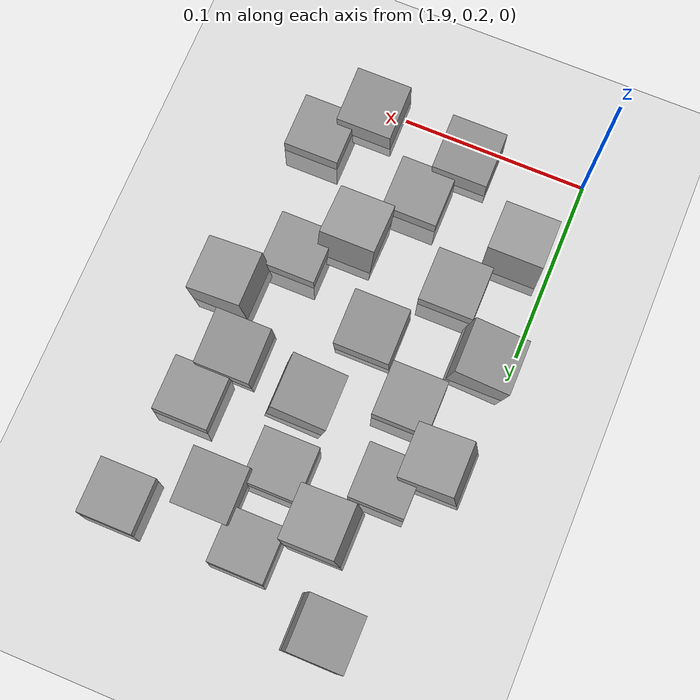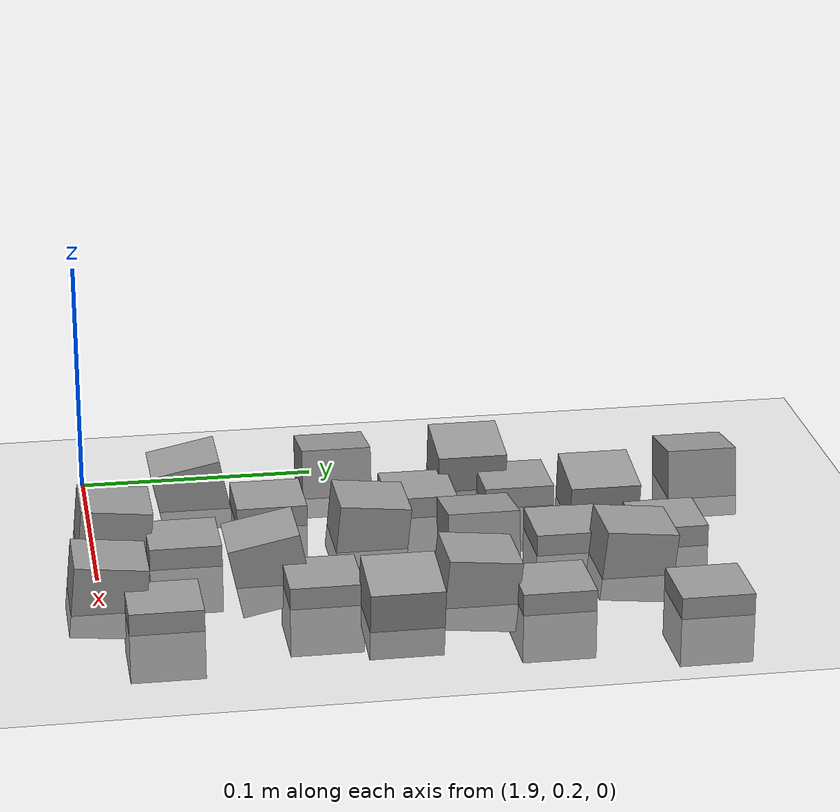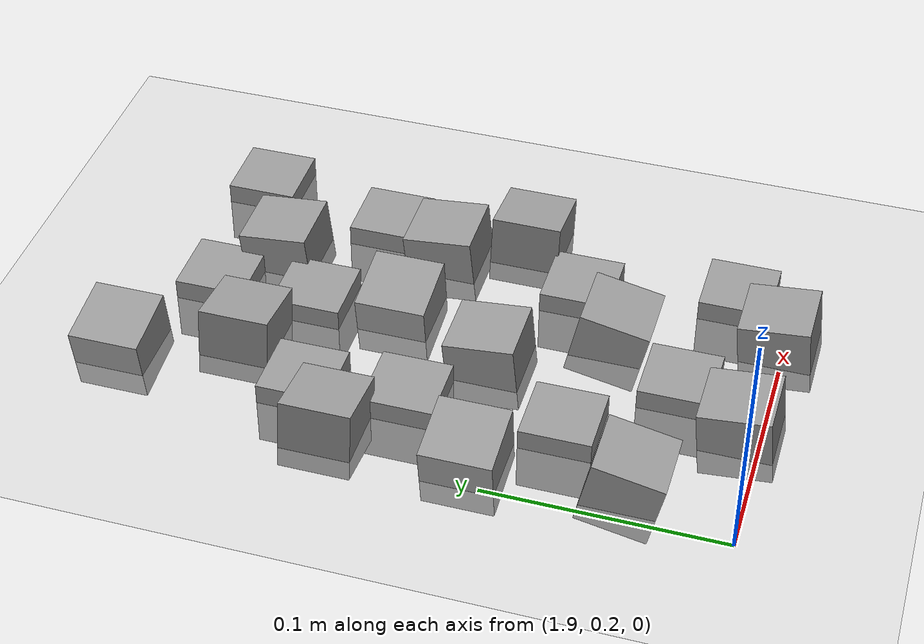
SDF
<sdf version="1.7">
 <world name="default">
  <model name="ground_plane">
   <static>1</static>
   <link name="link">
    <collision name="collision">
     <geometry><plane><normal>0 0 1</normal><size>100 100</size></plane></geometry>
     <surface><friction><ode><mu>100</mu><mu2>50</mu2></ode></friction></surface>
    </collision>
    <visual name="visual">
     <cast_shadows>0</cast_shadows>
     <geometry><plane><normal>0 0 1</normal><size>100 100</size></plane></geometry>
     <material>
      <script><uri>file://media/materials/scripts/gazebo.material</uri><name>Gazebo/Grey</name></script>
     </material>
    </visual>
   </link>
  </model>
  <model name="stone_road_3">
   <link name="link_0_clone_0">
    <inertial>
     <mass>1</mass>
     <inertia>
      <ixx>0.166667</ixx>
      <ixy>0</ixy>
      <ixz>0</ixz>
      <iyy>0.166667</iyy>
      <iyz>0</iyz>
      <izz>0.166667</izz>
     </inertia>
    </inertial>
    <pose>-0.104982 -0.15412 0.003778 0.2 -0 0</pose>
    <kinematic>1</kinematic>
    <visual name="visual">
     <geometry><box><size>0.03 0.03 0.03</size></box></geometry>
     <material>
      <lighting>1</lighting>
      <script><uri>file://media/materials/scripts/gazebo.material</uri><name>Gazebo/Grey</name></script>
      <shader type="pixel"><normal_map>__default__</normal_map></shader>
      <ambient>0.3 0.3 0.3 1</ambient>
      <diffuse>0.7 0.7 0.7 1</diffuse>
      <specular>0.01 0.01 0.01 1</specular>
      <emissive>0 0 0 1</emissive>
     </material>
    </visual>
    <collision name="collision">
     <geometry><box><size>0.03 0.03 0.03</size></box></geometry>
     <surface>
      <friction>
       <ode><mu>1</mu><mu2>1</mu2><fdir1>0 0 0</fdir1><slip1>0</slip1><slip2>0</slip2></ode>
       <torsional>
        <coefficient>1</coefficient>
        <patch_radius>0</patch_radius>
        <surface_radius>0</surface_radius>
        <use_patch_radius>1</use_patch_radius>
        <ode><slip>0</slip></ode>
       </torsional>
      </friction>
      <bounce><restitution_coefficient>0</restitution_coefficient><threshold>1e+06</threshold></bounce>
      <contact>
       <collide_without_contact>0</collide_without_contact>
       <collide_without_contact_bitmask>1</collide_without_contact_bitmask>
       <collide_bitmask>1</collide_bitmask>
       <ode>
        <soft_cfm>0</soft_cfm>
        <soft_erp>0.2</soft_erp>
        <kp>1e+13</kp>
        <kd>1</kd>
        <max_vel>0.01</max_vel>
        <min_depth>0</min_depth>
       </ode>
       <bullet>
        <split_impulse>1</split_impulse>
        <split_impulse_penetration_threshold>-0.01</split_impulse_penetration_threshold>
        <soft_cfm>0</soft_cfm>
        <soft_erp>0.2</soft_erp>
        <kp>1e+13</kp>
        <kd>1</kd>
       </bullet>
      </contact>
     </surface>
    </collision>
   </link>
   <link name="link_0_clone_1">
    <inertial>
     <mass>1</mass>
     <inertia>
      <ixx>0.166667</ixx>
      <ixy>0</ixy>
      <ixz>0</ixz>
      <iyy>0.166667</iyy>
      <iyz>0</iyz>
      <izz>0.166667</izz>
     </inertia>
    </inertial>
    <pose>-0.022921 -0.129606 0.003778 0.2 -0 0</pose>
    <kinematic>1</kinematic>
    <visual name="visual">
     <geometry><box><size>0.03 0.03 0.03</size></box></geometry>
     <material>
      <lighting>1</lighting>
      <script><uri>file://media/materials/scripts/gazebo.material</uri><name>Gazebo/Grey</name></script>
      <shader type="pixel"><normal_map>__default__</normal_map></shader>
      <ambient>0.3 0.3 0.3 1</ambient>
      <diffuse>0.7 0.7 0.7 1</diffuse>
      <specular>0.01 0.01 0.01 1</specular>
      <emissive>0 0 0 1</emissive>
     </material>
    </visual>
    <collision name="collision">
     <geometry><box><size>0.03 0.03 0.03</size></box></geometry>
     <surface>
      <friction>
       <ode><mu>1</mu><mu2>1</mu2><fdir1>0 0 0</fdir1><slip1>0</slip1><slip2>0</slip2></ode>
       <torsional>
        <coefficient>1</coefficient>
        <patch_radius>0</patch_radius>
        <surface_radius>0</surface_radius>
        <use_patch_radius>1</use_patch_radius>
        <ode><slip>0</slip></ode>
       </torsional>
      </friction>
      <bounce><restitution_coefficient>0</restitution_coefficient><threshold>1e+06</threshold></bounce>
      <contact>
       <collide_without_contact>0</collide_without_contact>
       <collide_without_contact_bitmask>1</collide_without_contact_bitmask>
       <collide_bitmask>1</collide_bitmask>
       <ode>
        <soft_cfm>0</soft_cfm>
        <soft_erp>0.2</soft_erp>
        <kp>1e+13</kp>
        <kd>1</kd>
        <max_vel>0.01</max_vel>
        <min_depth>0</min_depth>
       </ode>
       <bullet>
        <split_impulse>1</split_impulse>
        <split_impulse_penetration_threshold>-0.01</split_impulse_penetration_threshold>
        <soft_cfm>0</soft_cfm>
        <soft_erp>0.2</soft_erp>
        <kp>1e+13</kp>
        <kd>1</kd>
       </bullet>
      </contact>
     </surface>
    </collision>
   </link>
   <link name="link_0_clone_2">
    <inertial>
     <mass>1</mass>
     <inertia>
      <ixx>0.166667</ixx>
      <ixy>0</ixy>
      <ixz>0</ixz>
      <iyy>0.166667</iyy>
      <iyz>0</iyz>
      <izz>0.166667</izz>
     </inertia>
    </inertial>
    <pose>-0.065685 0.018139 0.003778 0 0.15 0</pose>
    <kinematic>1</kinematic>
    <visual name="visual">
     <geometry><box><size>0.03 0.03 0.03</size></box></geometry>
     <material>
      <lighting>1</lighting>
      <script><uri>file://media/materials/scripts/gazebo.material</uri><name>Gazebo/Grey</name></script>
      <shader type="pixel"><normal_map>__default__</normal_map></shader>
      <ambient>0.3 0.3 0.3 1</ambient>
      <diffuse>0.7 0.7 0.7 1</diffuse>
      <specular>0.01 0.01 0.01 1</specular>
      <emissive>0 0 0 1</emissive>
     </material>
    </visual>
    <collision name="collision">
     <geometry><box><size>0.03 0.03 0.03</size></box></geometry>
     <surface>
      <friction>
       <ode><mu>1</mu><mu2>1</mu2><fdir1>0 0 0</fdir1><slip1>0</slip1><slip2>0</slip2></ode>
       <torsional>
        <coefficient>1</coefficient>
        <patch_radius>0</patch_radius>
        <surface_radius>0</surface_radius>
        <use_patch_radius>1</use_patch_radius>
        <ode><slip>0</slip></ode>
       </torsional>
      </friction>
      <bounce><restitution_coefficient>0</restitution_coefficient><threshold>1e+06</threshold></bounce>
      <contact>
       <collide_without_contact>0</collide_without_contact>
       <collide_without_contact_bitmask>1</collide_without_contact_bitmask>
       <collide_bitmask>1</collide_bitmask>
       <ode>
        <soft_cfm>0</soft_cfm>
        <soft_erp>0.2</soft_erp>
        <kp>1e+13</kp>
        <kd>1</kd>
        <max_vel>0.01</max_vel>
        <min_depth>0</min_depth>
       </ode>
       <bullet>
        <split_impulse>1</split_impulse>
        <split_impulse_penetration_threshold>-0.01</split_impulse_penetration_threshold>
        <soft_cfm>0</soft_cfm>
        <soft_erp>0.2</soft_erp>
        <kp>1e+13</kp>
        <kd>1</kd>
       </bullet>
      </contact>
     </surface>
    </collision>
   </link>
   <link name="link_0_clone_2_clone">
    <inertial>
     <mass>1</mass>
     <inertia>
      <ixx>0.166667</ixx>
      <ixy>0</ixy>
      <ixz>0</ixz>
      <iyy>0.166667</iyy>
      <iyz>0</iyz>
      <izz>0.166667</izz>
     </inertia>
    </inertial>
    <pose>-0.10771 -0.03187 0.003778 0 0.15 0</pose>
    <kinematic>1</kinematic>
    <visual name="visual">
     <geometry><box><size>0.03 0.03 0.03</size></box></geometry>
     <material>
      <lighting>1</lighting>
      <script><uri>file://media/materials/scripts/gazebo.material</uri><name>Gazebo/Grey</name></script>
      <shader type="pixel"><normal_map>__default__</normal_map></shader>
      <ambient>0.3 0.3 0.3 1</ambient>
      <diffuse>0.7 0.7 0.7 1</diffuse>
      <specular>0.01 0.01 0.01 1</specular>
      <emissive>0 0 0 1</emissive>
     </material>
    </visual>
    <collision name="collision">
     <geometry><box><size>0.03 0.03 0.03</size></box></geometry>
     <surface>
      <friction>
       <ode><mu>1</mu><mu2>1</mu2><fdir1>0 0 0</fdir1><slip1>0</slip1><slip2>0</slip2></ode>
       <torsional>
        <coefficient>1</coefficient>
        <patch_radius>0</patch_radius>
        <surface_radius>0</surface_radius>
        <use_patch_radius>1</use_patch_radius>
        <ode><slip>0</slip></ode>
       </torsional>
      </friction>
      <bounce><restitution_coefficient>0</restitution_coefficient><threshold>1e+06</threshold></bounce>
      <contact>
       <collide_without_contact>0</collide_without_contact>
       <collide_without_contact_bitmask>1</collide_without_contact_bitmask>
       <collide_bitmask>1</collide_bitmask>
       <ode>
        <soft_cfm>0</soft_cfm>
        <soft_erp>0.2</soft_erp>
        <kp>1e+13</kp>
        <kd>1</kd>
        <max_vel>0.01</max_vel>
        <min_depth>0</min_depth>
       </ode>
       <bullet>
        <split_impulse>1</split_impulse>
        <split_impulse_penetration_threshold>-0.01</split_impulse_penetration_threshold>
        <soft_cfm>0</soft_cfm>
        <soft_erp>0.2</soft_erp>
        <kp>1e+13</kp>
        <kd>1</kd>
       </bullet>
      </contact>
     </surface>
    </collision>
   </link>
   <link name="link_0_clone_2_clone_0">
    <inertial>
     <mass>1</mass>
     <inertia>
      <ixx>0.166667</ixx>
      <ixy>0</ixy>
      <ixz>0</ixz>
      <iyy>0.166667</iyy>
      <iyz>0</iyz>
      <izz>0.166667</izz>
     </inertia>
    </inertial>
    <pose>0.026852 -0.0813 0.003778 0 0.15 0</pose>
    <kinematic>1</kinematic>
    <visual name="visual">
     <geometry><box><size>0.03 0.03 0.03</size></box></geometry>
     <material>
      <lighting>1</lighting>
      <script><uri>file://media/materials/scripts/gazebo.material</uri><name>Gazebo/Grey</name></script>
      <shader type="pixel"><normal_map>__default__</normal_map></shader>
      <ambient>0.3 0.3 0.3 1</ambient>
      <diffuse>0.7 0.7 0.7 1</diffuse>
      <specular>0.01 0.01 0.01 1</specular>
      <emissive>0 0 0 1</emissive>
     </material>
    </visual>
    <collision name="collision">
     <geometry><box><size>0.03 0.03 0.03</size></box></geometry>
     <surface>
      <friction>
       <ode><mu>1</mu><mu2>1</mu2><fdir1>0 0 0</fdir1><slip1>0</slip1><slip2>0</slip2></ode>
       <torsional>
        <coefficient>1</coefficient>
        <patch_radius>0</patch_radius>
        <surface_radius>0</surface_radius>
        <use_patch_radius>1</use_patch_radius>
        <ode><slip>0</slip></ode>
       </torsional>
      </friction>
      <bounce><restitution_coefficient>0</restitution_coefficient><threshold>1e+06</threshold></bounce>
      <contact>
       <collide_without_contact>0</collide_without_contact>
       <collide_without_contact_bitmask>1</collide_without_contact_bitmask>
       <collide_bitmask>1</collide_bitmask>
       <ode>
        <soft_cfm>0</soft_cfm>
        <soft_erp>0.2</soft_erp>
        <kp>1e+13</kp>
        <kd>1</kd>
        <max_vel>0.01</max_vel>
        <min_depth>0</min_depth>
       </ode>
       <bullet>
        <split_impulse>1</split_impulse>
        <split_impulse_penetration_threshold>-0.01</split_impulse_penetration_threshold>
        <soft_cfm>0</soft_cfm>
        <soft_erp>0.2</soft_erp>
        <kp>1e+13</kp>
        <kd>1</kd>
       </bullet>
      </contact>
     </surface>
    </collision>
   </link>
   <link name="link_0_clone_2_clone_2_clone_0">
    <inertial>
     <mass>1</mass>
     <inertia>
      <ixx>0.166667</ixx>
      <ixy>0</ixy>
      <ixz>0</ixz>
      <iyy>0.166667</iyy>
      <iyz>0</iyz>
      <izz>0.166667</izz>
     </inertia>
    </inertial>
    <pose>-0.032874 -0.039714 0.003778 0 -0.15 0</pose>
    <kinematic>1</kinematic>
    <visual name="visual">
     <geometry><box><size>0.03 0.03 0.03</size></box></geometry>
     <material>
      <lighting>1</lighting>
      <script><uri>file://media/materials/scripts/gazebo.material</uri><name>Gazebo/Grey</name></script>
      <shader type="pixel"><normal_map>__default__</normal_map></shader>
      <ambient>0.3 0.3 0.3 1</ambient>
      <diffuse>0.7 0.7 0.7 1</diffuse>
      <specular>0.01 0.01 0.01 1</specular>
      <emissive>0 0 0 1</emissive>
     </material>
    </visual>
    <collision name="collision">
     <geometry><box><size>0.03 0.03 0.03</size></box></geometry>
     <surface>
      <friction>
       <ode><mu>1</mu><mu2>1</mu2><fdir1>0 0 0</fdir1><slip1>0</slip1><slip2>0</slip2></ode>
       <torsional>
        <coefficient>1</coefficient>
        <patch_radius>0</patch_radius>
        <surface_radius>0</surface_radius>
        <use_patch_radius>1</use_patch_radius>
        <ode><slip>0</slip></ode>
       </torsional>
      </friction>
      <bounce><restitution_coefficient>0</restitution_coefficient><threshold>1e+06</threshold></bounce>
      <contact>
       <collide_without_contact>0</collide_without_contact>
       <collide_without_contact_bitmask>1</collide_without_contact_bitmask>
       <collide_bitmask>1</collide_bitmask>
       <ode>
        <soft_cfm>0</soft_cfm>
        <soft_erp>0.2</soft_erp>
        <kp>1e+13</kp>
        <kd>1</kd>
        <max_vel>0.01</max_vel>
        <min_depth>0</min_depth>
       </ode>
       <bullet>
        <split_impulse>1</split_impulse>
        <split_impulse_penetration_threshold>-0.01</split_impulse_penetration_threshold>
        <soft_cfm>0</soft_cfm>
        <soft_erp>0.2</soft_erp>
        <kp>1e+13</kp>
        <kd>1</kd>
       </bullet>
      </contact>
     </surface>
    </collision>
   </link>
   <link name="link_0_clone_2_clone_2_clone_1">
    <inertial>
     <mass>1</mass>
     <inertia>
      <ixx>0.166667</ixx>
      <ixy>0</ixy>
      <ixz>0</ixz>
      <iyy>0.166667</iyy>
      <iyz>0</iyz>
      <izz>0.166667</izz>
     </inertia>
    </inertial>
    <pose>-0.085624 0.065625 0.003778 0 -0.15 0</pose>
    <kinematic>1</kinematic>
    <visual name="visual">
     <geometry><box><size>0.03 0.03 0.03</size></box></geometry>
     <material>
      <lighting>1</lighting>
      <script><uri>file://media/materials/scripts/gazebo.material</uri><name>Gazebo/Grey</name></script>
      <shader type="pixel"><normal_map>__default__</normal_map></shader>
      <ambient>0.3 0.3 0.3 1</ambient>
      <diffuse>0.7 0.7 0.7 1</diffuse>
      <specular>0.01 0.01 0.01 1</specular>
      <emissive>0 0 0 1</emissive>
     </material>
    </visual>
    <collision name="collision">
     <geometry><box><size>0.03 0.03 0.03</size></box></geometry>
     <surface>
      <friction>
       <ode><mu>1</mu><mu2>1</mu2><fdir1>0 0 0</fdir1><slip1>0</slip1><slip2>0</slip2></ode>
       <torsional>
        <coefficient>1</coefficient>
        <patch_radius>0</patch_radius>
        <surface_radius>0</surface_radius>
        <use_patch_radius>1</use_patch_radius>
        <ode><slip>0</slip></ode>
       </torsional>
      </friction>
      <bounce><restitution_coefficient>0</restitution_coefficient><threshold>1e+06</threshold></bounce>
      <contact>
       <collide_without_contact>0</collide_without_contact>
       <collide_without_contact_bitmask>1</collide_without_contact_bitmask>
       <collide_bitmask>1</collide_bitmask>
       <ode>
        <soft_cfm>0</soft_cfm>
        <soft_erp>0.2</soft_erp>
        <kp>1e+13</kp>
        <kd>1</kd>
        <max_vel>0.01</max_vel>
        <min_depth>0</min_depth>
       </ode>
       <bullet>
        <split_impulse>1</split_impulse>
        <split_impulse_penetration_threshold>-0.01</split_impulse_penetration_threshold>
        <soft_cfm>0</soft_cfm>
        <soft_erp>0.2</soft_erp>
        <kp>1e+13</kp>
        <kd>1</kd>
       </bullet>
      </contact>
     </surface>
    </collision>
   </link>
   <link name="link_0_clone_2_clone_2_clone_13_clone_clone_10">
    <inertial>
     <mass>1</mass>
     <inertia>
      <ixx>0.166667</ixx>
      <ixy>0</ixy>
      <ixz>0</ixz>
      <iyy>0.166667</iyy>
      <iyz>0</iyz>
      <izz>0.166667</izz>
     </inertia>
    </inertial>
    <pose>-0.006825 -0.196489 0.003778 -0.1 0 0</pose>
    <kinematic>1</kinematic>
    <visual name="visual">
     <geometry><box><size>0.03 0.03 0.03</size></box></geometry>
     <material>
      <lighting>1</lighting>
      <script><uri>file://media/materials/scripts/gazebo.material</uri><name>Gazebo/Grey</name></script>
      <shader type="pixel"><normal_map>__default__</normal_map></shader>
      <ambient>0.3 0.3 0.3 1</ambient>
      <diffuse>0.7 0.7 0.7 1</diffuse>
      <specular>0.01 0.01 0.01 1</specular>
      <emissive>0 0 0 1</emissive>
     </material>
    </visual>
    <collision name="collision">
     <geometry><box><size>0.03 0.03 0.03</size></box></geometry>
     <surface>
      <friction>
       <ode><mu>1</mu><mu2>1</mu2><fdir1>0 0 0</fdir1><slip1>0</slip1><slip2>0</slip2></ode>
       <torsional>
        <coefficient>1</coefficient>
        <patch_radius>0</patch_radius>
        <surface_radius>0</surface_radius>
        <use_patch_radius>1</use_patch_radius>
        <ode><slip>0</slip></ode>
       </torsional>
      </friction>
      <bounce><restitution_coefficient>0</restitution_coefficient><threshold>1e+06</threshold></bounce>
      <contact>
       <collide_without_contact>0</collide_without_contact>
       <collide_without_contact_bitmask>1</collide_without_contact_bitmask>
       <collide_bitmask>1</collide_bitmask>
       <ode>
        <soft_cfm>0</soft_cfm>
        <soft_erp>0.2</soft_erp>
        <kp>1e+13</kp>
        <kd>1</kd>
        <max_vel>0.01</max_vel>
        <min_depth>0</min_depth>
       </ode>
       <bullet>
        <split_impulse>1</split_impulse>
        <split_impulse_penetration_threshold>-0.01</split_impulse_penetration_threshold>
        <soft_cfm>0</soft_cfm>
        <soft_erp>0.2</soft_erp>
        <kp>1e+13</kp>
        <kd>1</kd>
       </bullet>
      </contact>
     </surface>
    </collision>
   </link>
   <link name="link_0_clone_2_clone_2_clone_13_clone_clone_16_clone_1">
    <inertial>
     <mass>1</mass>
     <inertia>
      <ixx>0.166667</ixx>
      <ixy>0</ixy>
      <ixz>0</ixz>
      <iyy>0.166667</iyy>
      <iyz>0</iyz>
      <izz>0.166667</izz>
     </inertia>
    </inertial>
    <pose>0.033787 0.042837 -0.006222 0 -0 0</pose>
    <kinematic>1</kinematic>
    <visual name="visual">
     <geometry><box><size>0.03 0.03 0.03</size></box></geometry>
     <material>
      <lighting>1</lighting>
      <script><uri>file://media/materials/scripts/gazebo.material</uri><name>Gazebo/Grey</name></script>
      <shader type="pixel"><normal_map>__default__</normal_map></shader>
      <ambient>0.3 0.3 0.3 1</ambient>
      <diffuse>0.7 0.7 0.7 1</diffuse>
      <specular>0.01 0.01 0.01 1</specular>
      <emissive>0 0 0 1</emissive>
     </material>
    </visual>
    <collision name="collision">
     <geometry><box><size>0.03 0.03 0.03</size></box></geometry>
     <surface>
      <friction>
       <ode><mu>1</mu><mu2>1</mu2><fdir1>0 0 0</fdir1><slip1>0</slip1><slip2>0</slip2></ode>
       <torsional>
        <coefficient>1</coefficient>
        <patch_radius>0</patch_radius>
        <surface_radius>0</surface_radius>
        <use_patch_radius>1</use_patch_radius>
        <ode><slip>0</slip></ode>
       </torsional>
      </friction>
      <bounce><restitution_coefficient>0</restitution_coefficient><threshold>1e+06</threshold></bounce>
      <contact>
       <collide_without_contact>0</collide_without_contact>
       <collide_without_contact_bitmask>1</collide_without_contact_bitmask>
       <collide_bitmask>1</collide_bitmask>
       <ode>
        <soft_cfm>0</soft_cfm>
        <soft_erp>0.2</soft_erp>
        <kp>1e+13</kp>
        <kd>1</kd>
        <max_vel>0.01</max_vel>
        <min_depth>0</min_depth>
       </ode>
       <bullet>
        <split_impulse>1</split_impulse>
        <split_impulse_penetration_threshold>-0.01</split_impulse_penetration_threshold>
        <soft_cfm>0</soft_cfm>
        <soft_erp>0.2</soft_erp>
        <kp>1e+13</kp>
        <kd>1</kd>
       </bullet>
      </contact>
     </surface>
    </collision>
   </link>
   <link name="link_0_clone_2_clone_2_clone_13_clone_clone_16_clone_10">
    <inertial>
     <mass>1</mass>
     <inertia>
      <ixx>0.166667</ixx>
      <ixy>0</ixy>
      <ixz>0</ixz>
      <iyy>0.166667</iyy>
      <iyz>0</iyz>
      <izz>0.166667</izz>
     </inertia>
    </inertial>
    <pose>-0.082186 -0.05781 -0.006222 0 -0 0</pose>
    <kinematic>1</kinematic>
    <visual name="visual">
     <geometry><box><size>0.03 0.03 0.03</size></box></geometry>
     <material>
      <lighting>1</lighting>
      <script><uri>file://media/materials/scripts/gazebo.material</uri><name>Gazebo/Grey</name></script>
      <shader type="pixel"><normal_map>__default__</normal_map></shader>
      <ambient>0.3 0.3 0.3 1</ambient>
      <diffuse>0.7 0.7 0.7 1</diffuse>
      <specular>0.01 0.01 0.01 1</specular>
      <emissive>0 0 0 1</emissive>
     </material>
    </visual>
    <collision name="collision">
     <geometry><box><size>0.03 0.03 0.03</size></box></geometry>
     <surface>
      <friction>
       <ode><mu>1</mu><mu2>1</mu2><fdir1>0 0 0</fdir1><slip1>0</slip1><slip2>0</slip2></ode>
       <torsional>
        <coefficient>1</coefficient>
        <patch_radius>0</patch_radius>
        <surface_radius>0</surface_radius>
        <use_patch_radius>1</use_patch_radius>
        <ode><slip>0</slip></ode>
       </torsional>
      </friction>
      <bounce><restitution_coefficient>0</restitution_coefficient><threshold>1e+06</threshold></bounce>
      <contact>
       <collide_without_contact>0</collide_without_contact>
       <collide_without_contact_bitmask>1</collide_without_contact_bitmask>
       <collide_bitmask>1</collide_bitmask>
       <ode>
        <soft_cfm>0</soft_cfm>
        <soft_erp>0.2</soft_erp>
        <kp>1e+13</kp>
        <kd>1</kd>
        <max_vel>0.01</max_vel>
        <min_depth>0</min_depth>
       </ode>
       <bullet>
        <split_impulse>1</split_impulse>
        <split_impulse_penetration_threshold>-0.01</split_impulse_penetration_threshold>
        <soft_cfm>0</soft_cfm>
        <soft_erp>0.2</soft_erp>
        <kp>1e+13</kp>
        <kd>1</kd>
       </bullet>
      </contact>
     </surface>
    </collision>
   </link>
   <link name="link_0_clone_2_clone_2_clone_13_clone_clone_16_clone_17">
    <inertial>
     <mass>1</mass>
     <inertia>
      <ixx>0.166667</ixx>
      <ixy>0</ixy>
      <ixz>0</ixz>
      <iyy>0.166667</iyy>
      <iyz>0</iyz>
      <izz>0.166667</izz>
     </inertia>
    </inertial>
    <pose>0.014877 -0.175392 -0.006222 0 -0 0</pose>
    <kinematic>1</kinematic>
    <visual name="visual">
     <geometry><box><size>0.03 0.03 0.03</size></box></geometry>
     <material>
      <lighting>1</lighting>
      <script><uri>file://media/materials/scripts/gazebo.material</uri><name>Gazebo/Grey</name></script>
      <shader type="pixel"><normal_map>__default__</normal_map></shader>
      <ambient>0.3 0.3 0.3 1</ambient>
      <diffuse>0.7 0.7 0.7 1</diffuse>
      <specular>0.01 0.01 0.01 1</specular>
      <emissive>0 0 0 1</emissive>
     </material>
    </visual>
    <collision name="collision">
     <geometry><box><size>0.03 0.03 0.03</size></box></geometry>
     <surface>
      <friction>
       <ode><mu>1</mu><mu2>1</mu2><fdir1>0 0 0</fdir1><slip1>0</slip1><slip2>0</slip2></ode>
       <torsional>
        <coefficient>1</coefficient>
        <patch_radius>0</patch_radius>
        <surface_radius>0</surface_radius>
        <use_patch_radius>1</use_patch_radius>
        <ode><slip>0</slip></ode>
       </torsional>
      </friction>
      <bounce><restitution_coefficient>0</restitution_coefficient><threshold>1e+06</threshold></bounce>
      <contact>
       <collide_without_contact>0</collide_without_contact>
       <collide_without_contact_bitmask>1</collide_without_contact_bitmask>
       <collide_bitmask>1</collide_bitmask>
       <ode>
        <soft_cfm>0</soft_cfm>
        <soft_erp>0.2</soft_erp>
        <kp>1e+13</kp>
        <kd>1</kd>
        <max_vel>0.01</max_vel>
        <min_depth>0</min_depth>
       </ode>
       <bullet>
        <split_impulse>1</split_impulse>
        <split_impulse_penetration_threshold>-0.01</split_impulse_penetration_threshold>
        <soft_cfm>0</soft_cfm>
        <soft_erp>0.2</soft_erp>
        <kp>1e+13</kp>
        <kd>1</kd>
       </bullet>
      </contact>
     </surface>
    </collision>
   </link>
   <link name="link_0_clone_2_clone_2_clone_13_clone_clone_16_clone_2">
    <inertial>
     <mass>1</mass>
     <inertia>
      <ixx>0.166667</ixx>
      <ixy>0</ixy>
      <ixz>0</ixz>
      <iyy>0.166667</iyy>
      <iyz>0</iyz>
      <izz>0.166667</izz>
     </inertia>
    </inertial>
    <pose>-0.035128 0.040728 -0.006222 0 -0 0</pose>
    <kinematic>1</kinematic>
    <visual name="visual">
     <geometry><box><size>0.03 0.03 0.03</size></box></geometry>
     <material>
      <lighting>1</lighting>
      <script><uri>file://media/materials/scripts/gazebo.material</uri><name>Gazebo/Grey</name></script>
      <shader type="pixel"><normal_map>__default__</normal_map></shader>
      <ambient>0.3 0.3 0.3 1</ambient>
      <diffuse>0.7 0.7 0.7 1</diffuse>
      <specular>0.01 0.01 0.01 1</specular>
      <emissive>0 0 0 1</emissive>
     </material>
    </visual>
    <collision name="collision">
     <geometry><box><size>0.03 0.03 0.03</size></box></geometry>
     <surface>
      <friction>
       <ode><mu>1</mu><mu2>1</mu2><fdir1>0 0 0</fdir1><slip1>0</slip1><slip2>0</slip2></ode>
       <torsional>
        <coefficient>1</coefficient>
        <patch_radius>0</patch_radius>
        <surface_radius>0</surface_radius>
        <use_patch_radius>1</use_patch_radius>
        <ode><slip>0</slip></ode>
       </torsional>
      </friction>
      <bounce><restitution_coefficient>0</restitution_coefficient><threshold>1e+06</threshold></bounce>
      <contact>
       <collide_without_contact>0</collide_without_contact>
       <collide_without_contact_bitmask>1</collide_without_contact_bitmask>
       <collide_bitmask>1</collide_bitmask>
       <ode>
        <soft_cfm>0</soft_cfm>
        <soft_erp>0.2</soft_erp>
        <kp>1e+13</kp>
        <kd>1</kd>
        <max_vel>0.01</max_vel>
        <min_depth>0</min_depth>
       </ode>
       <bullet>
        <split_impulse>1</split_impulse>
        <split_impulse_penetration_threshold>-0.01</split_impulse_penetration_threshold>
        <soft_cfm>0</soft_cfm>
        <soft_erp>0.2</soft_erp>
        <kp>1e+13</kp>
        <kd>1</kd>
       </bullet>
      </contact>
     </surface>
    </collision>
   </link>
   <link name="link_0_clone_2_clone_2_clone_13_clone_clone_16_clone_26">
    <inertial>
     <mass>1</mass>
     <inertia>
      <ixx>0.166667</ixx>
      <ixy>0</ixy>
      <ixz>0</ixz>
      <iyy>0.166667</iyy>
      <iyz>0</iyz>
      <izz>0.166667</izz>
     </inertia>
    </inertial>
    <pose>-0.035162 -0.002247 -0.006222 0 -0 0</pose>
    <kinematic>1</kinematic>
    <visual name="visual">
     <geometry><box><size>0.03 0.03 0.03</size></box></geometry>
     <material>
      <lighting>1</lighting>
      <script><uri>file://media/materials/scripts/gazebo.material</uri><name>Gazebo/Grey</name></script>
      <shader type="pixel"><normal_map>__default__</normal_map></shader>
      <ambient>0.3 0.3 0.3 1</ambient>
      <diffuse>0.7 0.7 0.7 1</diffuse>
      <specular>0.01 0.01 0.01 1</specular>
      <emissive>0 0 0 1</emissive>
     </material>
    </visual>
    <collision name="collision">
     <geometry><box><size>0.03 0.03 0.03</size></box></geometry>
     <surface>
      <friction>
       <ode><mu>1</mu><mu2>1</mu2><fdir1>0 0 0</fdir1><slip1>0</slip1><slip2>0</slip2></ode>
       <torsional>
        <coefficient>1</coefficient>
        <patch_radius>0</patch_radius>
        <surface_radius>0</surface_radius>
        <use_patch_radius>1</use_patch_radius>
        <ode><slip>0</slip></ode>
       </torsional>
      </friction>
      <bounce><restitution_coefficient>0</restitution_coefficient><threshold>1e+06</threshold></bounce>
      <contact>
       <collide_without_contact>0</collide_without_contact>
       <collide_without_contact_bitmask>1</collide_without_contact_bitmask>
       <collide_bitmask>1</collide_bitmask>
       <ode>
        <soft_cfm>0</soft_cfm>
        <soft_erp>0.2</soft_erp>
        <kp>1e+13</kp>
        <kd>1</kd>
        <max_vel>0.01</max_vel>
        <min_depth>0</min_depth>
       </ode>
       <bullet>
        <split_impulse>1</split_impulse>
        <split_impulse_penetration_threshold>-0.01</split_impulse_penetration_threshold>
        <soft_cfm>0</soft_cfm>
        <soft_erp>0.2</soft_erp>
        <kp>1e+13</kp>
        <kd>1</kd>
       </bullet>
      </contact>
     </surface>
    </collision>
   </link>
   <link name="link_0_clone_2_clone_2_clone_13_clone_clone_16_clone_5">
    <inertial>
     <mass>1</mass>
     <inertia>
      <ixx>0.166667</ixx>
      <ixy>0</ixy>
      <ixz>0</ixz>
      <iyy>0.166667</iyy>
      <iyz>0</iyz>
      <izz>0.166667</izz>
     </inertia>
    </inertial>
    <pose>-0.086674 -0.014784 -0.006222 0 -0 0</pose>
    <kinematic>1</kinematic>
    <visual name="visual">
     <geometry><box><size>0.03 0.03 0.03</size></box></geometry>
     <material>
      <lighting>1</lighting>
      <script><uri>file://media/materials/scripts/gazebo.material</uri><name>Gazebo/Grey</name></script>
      <shader type="pixel"><normal_map>__default__</normal_map></shader>
      <ambient>0.3 0.3 0.3 1</ambient>
      <diffuse>0.7 0.7 0.7 1</diffuse>
      <specular>0.01 0.01 0.01 1</specular>
      <emissive>0 0 0 1</emissive>
     </material>
    </visual>
    <collision name="collision">
     <geometry><box><size>0.03 0.03 0.03</size></box></geometry>
     <surface>
      <friction>
       <ode><mu>1</mu><mu2>1</mu2><fdir1>0 0 0</fdir1><slip1>0</slip1><slip2>0</slip2></ode>
       <torsional>
        <coefficient>1</coefficient>
        <patch_radius>0</patch_radius>
        <surface_radius>0</surface_radius>
        <use_patch_radius>1</use_patch_radius>
        <ode><slip>0</slip></ode>
       </torsional>
      </friction>
      <bounce><restitution_coefficient>0</restitution_coefficient><threshold>1e+06</threshold></bounce>
      <contact>
       <collide_without_contact>0</collide_without_contact>
       <collide_without_contact_bitmask>1</collide_without_contact_bitmask>
       <collide_bitmask>1</collide_bitmask>
       <ode>
        <soft_cfm>0</soft_cfm>
        <soft_erp>0.2</soft_erp>
        <kp>1e+13</kp>
        <kd>1</kd>
        <max_vel>0.01</max_vel>
        <min_depth>0</min_depth>
       </ode>
       <bullet>
        <split_impulse>1</split_impulse>
        <split_impulse_penetration_threshold>-0.01</split_impulse_penetration_threshold>
        <soft_cfm>0</soft_cfm>
        <soft_erp>0.2</soft_erp>
        <kp>1e+13</kp>
        <kd>1</kd>
       </bullet>
      </contact>
     </surface>
    </collision>
   </link>
   <link name="link_0_clone_2_clone_2_clone_13_clone_clone_16_clone_6">
    <inertial>
     <mass>1</mass>
     <inertia>
      <ixx>0.166667</ixx>
      <ixy>0</ixy>
      <ixz>0</ixz>
      <iyy>0.166667</iyy>
      <iyz>0</iyz>
      <izz>0.166667</izz>
     </inertia>
    </inertial>
    <pose>0.020774 -0.018727 -0.006222 0 -0 0</pose>
    <kinematic>1</kinematic>
    <visual name="visual">
     <geometry><box><size>0.03 0.03 0.03</size></box></geometry>
     <material>
      <lighting>1</lighting>
      <script><uri>file://media/materials/scripts/gazebo.material</uri><name>Gazebo/Grey</name></script>
      <shader type="pixel"><normal_map>__default__</normal_map></shader>
      <ambient>0.3 0.3 0.3 1</ambient>
      <diffuse>0.7 0.7 0.7 1</diffuse>
      <specular>0.01 0.01 0.01 1</specular>
      <emissive>0 0 0 1</emissive>
     </material>
    </visual>
    <collision name="collision">
     <geometry><box><size>0.03 0.03 0.03</size></box></geometry>
     <surface>
      <friction>
       <ode><mu>1</mu><mu2>1</mu2><fdir1>0 0 0</fdir1><slip1>0</slip1><slip2>0</slip2></ode>
       <torsional>
        <coefficient>1</coefficient>
        <patch_radius>0</patch_radius>
        <surface_radius>0</surface_radius>
        <use_patch_radius>1</use_patch_radius>
        <ode><slip>0</slip></ode>
       </torsional>
      </friction>
      <bounce><restitution_coefficient>0</restitution_coefficient><threshold>1e+06</threshold></bounce>
      <contact>
       <collide_without_contact>0</collide_without_contact>
       <collide_without_contact_bitmask>1</collide_without_contact_bitmask>
       <collide_bitmask>1</collide_bitmask>
       <ode>
        <soft_cfm>0</soft_cfm>
        <soft_erp>0.2</soft_erp>
        <kp>1e+13</kp>
        <kd>1</kd>
        <max_vel>0.01</max_vel>
        <min_depth>0</min_depth>
       </ode>
       <bullet>
        <split_impulse>1</split_impulse>
        <split_impulse_penetration_threshold>-0.01</split_impulse_penetration_threshold>
        <soft_cfm>0</soft_cfm>
        <soft_erp>0.2</soft_erp>
        <kp>1e+13</kp>
        <kd>1</kd>
       </bullet>
      </contact>
     </surface>
    </collision>
   </link>
   <link name="link_0_clone_2_clone_2_clone_13_clone_clone_16_clone_7">
    <inertial>
     <mass>1</mass>
     <inertia>
      <ixx>0.166667</ixx>
      <ixy>0</ixy>
      <ixz>0</ixz>
      <iyy>0.166667</iyy>
      <iyz>0</iyz>
      <izz>0.166667</izz>
     </inertia>
    </inertial>
    <pose>0.000883 -0.109959 -0.006222 0 -0 0</pose>
    <kinematic>1</kinematic>
    <visual name="visual">
     <geometry><box><size>0.03 0.03 0.03</size></box></geometry>
     <material>
      <lighting>1</lighting>
      <script><uri>file://media/materials/scripts/gazebo.material</uri><name>Gazebo/Grey</name></script>
      <shader type="pixel"><normal_map>__default__</normal_map></shader>
      <ambient>0.3 0.3 0.3 1</ambient>
      <diffuse>0.7 0.7 0.7 1</diffuse>
      <specular>0.01 0.01 0.01 1</specular>
      <emissive>0 0 0 1</emissive>
     </material>
    </visual>
    <collision name="collision">
     <geometry><box><size>0.03 0.03 0.03</size></box></geometry>
     <surface>
      <friction>
       <ode><mu>1</mu><mu2>1</mu2><fdir1>0 0 0</fdir1><slip1>0</slip1><slip2>0</slip2></ode>
       <torsional>
        <coefficient>1</coefficient>
        <patch_radius>0</patch_radius>
        <surface_radius>0</surface_radius>
        <use_patch_radius>1</use_patch_radius>
        <ode><slip>0</slip></ode>
       </torsional>
      </friction>
      <bounce><restitution_coefficient>0</restitution_coefficient><threshold>1e+06</threshold></bounce>
      <contact>
       <collide_without_contact>0</collide_without_contact>
       <collide_without_contact_bitmask>1</collide_without_contact_bitmask>
       <collide_bitmask>1</collide_bitmask>
       <ode>
        <soft_cfm>0</soft_cfm>
        <soft_erp>0.2</soft_erp>
        <kp>1e+13</kp>
        <kd>1</kd>
        <max_vel>0.01</max_vel>
        <min_depth>0</min_depth>
       </ode>
       <bullet>
        <split_impulse>1</split_impulse>
        <split_impulse_penetration_threshold>-0.01</split_impulse_penetration_threshold>
        <soft_cfm>0</soft_cfm>
        <soft_erp>0.2</soft_erp>
        <kp>1e+13</kp>
        <kd>1</kd>
       </bullet>
      </contact>
     </surface>
    </collision>
   </link>
   <link name="link_0_clone_2_clone_2_clone_13_clone_clone_16_clone_8">
    <inertial>
     <mass>1</mass>
     <inertia>
      <ixx>0.166667</ixx>
      <ixy>0</ixy>
      <ixz>0</ixz>
      <iyy>0.166667</iyy>
      <iyz>0</iyz>
      <izz>0.166667</izz>
     </inertia>
    </inertial>
    <pose>-0.045715 -0.162471 -0.006222 0 -0 0</pose>
    <kinematic>1</kinematic>
    <visual name="visual">
     <geometry><box><size>0.03 0.03 0.03</size></box></geometry>
     <material>
      <lighting>1</lighting>
      <script><uri>file://media/materials/scripts/gazebo.material</uri><name>Gazebo/Grey</name></script>
      <shader type="pixel"><normal_map>__default__</normal_map></shader>
      <ambient>0.3 0.3 0.3 1</ambient>
      <diffuse>0.7 0.7 0.7 1</diffuse>
      <specular>0.01 0.01 0.01 1</specular>
      <emissive>0 0 0 1</emissive>
     </material>
    </visual>
    <collision name="collision">
     <geometry><box><size>0.03 0.03 0.03</size></box></geometry>
     <surface>
      <friction>
       <ode><mu>1</mu><mu2>1</mu2><fdir1>0 0 0</fdir1><slip1>0</slip1><slip2>0</slip2></ode>
       <torsional>
        <coefficient>1</coefficient>
        <patch_radius>0</patch_radius>
        <surface_radius>0</surface_radius>
        <use_patch_radius>1</use_patch_radius>
        <ode><slip>0</slip></ode>
       </torsional>
      </friction>
      <bounce><restitution_coefficient>0</restitution_coefficient><threshold>1e+06</threshold></bounce>
      <contact>
       <collide_without_contact>0</collide_without_contact>
       <collide_without_contact_bitmask>1</collide_without_contact_bitmask>
       <collide_bitmask>1</collide_bitmask>
       <ode>
        <soft_cfm>0</soft_cfm>
        <soft_erp>0.2</soft_erp>
        <kp>1e+13</kp>
        <kd>1</kd>
        <max_vel>0.01</max_vel>
        <min_depth>0</min_depth>
       </ode>
       <bullet>
        <split_impulse>1</split_impulse>
        <split_impulse_penetration_threshold>-0.01</split_impulse_penetration_threshold>
        <soft_cfm>0</soft_cfm>
        <soft_erp>0.2</soft_erp>
        <kp>1e+13</kp>
        <kd>1</kd>
       </bullet>
      </contact>
     </surface>
    </collision>
   </link>
   <link name="link_0_clone_2_clone_2_clone_13_clone_clone_16_clone_9">
    <inertial>
     <mass>1</mass>
     <inertia>
      <ixx>0.166667</ixx>
      <ixy>0</ixy>
      <ixz>0</ixz>
      <iyy>0.166667</iyy>
      <iyz>0</iyz>
      <izz>0.166667</izz>
     </inertia>
    </inertial>
    <pose>-0.081689 -0.122641 -0.006222 0 -0 0</pose>
    <kinematic>1</kinematic>
    <visual name="visual">
     <geometry><box><size>0.03 0.03 0.03</size></box></geometry>
     <material>
      <lighting>1</lighting>
      <script><uri>file://media/materials/scripts/gazebo.material</uri><name>Gazebo/Grey</name></script>
      <shader type="pixel"><normal_map>__default__</normal_map></shader>
      <ambient>0.3 0.3 0.3 1</ambient>
      <diffuse>0.7 0.7 0.7 1</diffuse>
      <specular>0.01 0.01 0.01 1</specular>
      <emissive>0 0 0 1</emissive>
     </material>
    </visual>
    <collision name="collision">
     <geometry><box><size>0.03 0.03 0.03</size></box></geometry>
     <surface>
      <friction>
       <ode><mu>1</mu><mu2>1</mu2><fdir1>0 0 0</fdir1><slip1>0</slip1><slip2>0</slip2></ode>
       <torsional>
        <coefficient>1</coefficient>
        <patch_radius>0</patch_radius>
        <surface_radius>0</surface_radius>
        <use_patch_radius>1</use_patch_radius>
        <ode><slip>0</slip></ode>
       </torsional>
      </friction>
      <bounce><restitution_coefficient>0</restitution_coefficient><threshold>1e+06</threshold></bounce>
      <contact>
       <collide_without_contact>0</collide_without_contact>
       <collide_without_contact_bitmask>1</collide_without_contact_bitmask>
       <collide_bitmask>1</collide_bitmask>
       <ode>
        <soft_cfm>0</soft_cfm>
        <soft_erp>0.2</soft_erp>
        <kp>1e+13</kp>
        <kd>1</kd>
        <max_vel>0.01</max_vel>
        <min_depth>0</min_depth>
       </ode>
       <bullet>
        <split_impulse>1</split_impulse>
        <split_impulse_penetration_threshold>-0.01</split_impulse_penetration_threshold>
        <soft_cfm>0</soft_cfm>
        <soft_erp>0.2</soft_erp>
        <kp>1e+13</kp>
        <kd>1</kd>
       </bullet>
      </contact>
     </surface>
    </collision>
   </link>
   <link name="link_0_clone_2_clone_2_clone_13_clone_clone_3">
    <inertial>
     <mass>1</mass>
     <inertia>
      <ixx>0.166667</ixx>
      <ixy>0</ixy>
      <ixz>0</ixz>
      <iyy>0.166667</iyy>
      <iyz>0</iyz>
      <izz>0.166667</izz>
     </inertia>
    </inertial>
    <pose>-0.008408 0.020239 0.003778 -0.1 0 0</pose>
    <kinematic>1</kinematic>
    <visual name="visual">
     <geometry><box><size>0.03 0.03 0.03</size></box></geometry>
     <material>
      <lighting>1</lighting>
      <script><uri>file://media/materials/scripts/gazebo.material</uri><name>Gazebo/Grey</name></script>
      <shader type="pixel"><normal_map>__default__</normal_map></shader>
      <ambient>0.3 0.3 0.3 1</ambient>
      <diffuse>0.7 0.7 0.7 1</diffuse>
      <specular>0.01 0.01 0.01 1</specular>
      <emissive>0 0 0 1</emissive>
     </material>
    </visual>
    <collision name="collision">
     <geometry><box><size>0.03 0.03 0.03</size></box></geometry>
     <surface>
      <friction>
       <ode><mu>1</mu><mu2>1</mu2><fdir1>0 0 0</fdir1><slip1>0</slip1><slip2>0</slip2></ode>
       <torsional>
        <coefficient>1</coefficient>
        <patch_radius>0</patch_radius>
        <surface_radius>0</surface_radius>
        <use_patch_radius>1</use_patch_radius>
        <ode><slip>0</slip></ode>
       </torsional>
      </friction>
      <bounce><restitution_coefficient>0</restitution_coefficient><threshold>1e+06</threshold></bounce>
      <contact>
       <collide_without_contact>0</collide_without_contact>
       <collide_without_contact_bitmask>1</collide_without_contact_bitmask>
       <collide_bitmask>1</collide_bitmask>
       <ode>
        <soft_cfm>0</soft_cfm>
        <soft_erp>0.2</soft_erp>
        <kp>1e+13</kp>
        <kd>1</kd>
        <max_vel>0.01</max_vel>
        <min_depth>0</min_depth>
       </ode>
       <bullet>
        <split_impulse>1</split_impulse>
        <split_impulse_penetration_threshold>-0.01</split_impulse_penetration_threshold>
        <soft_cfm>0</soft_cfm>
        <soft_erp>0.2</soft_erp>
        <kp>1e+13</kp>
        <kd>1</kd>
       </bullet>
      </contact>
     </surface>
    </collision>
   </link>
   <link name="link_0_clone_2_clone_2_clone_13_clone_clone_6">
    <inertial>
     <mass>1</mass>
     <inertia>
      <ixx>0.166667</ixx>
      <ixy>0</ixy>
      <ixz>0</ixz>
      <iyy>0.166667</iyy>
      <iyz>0</iyz>
      <izz>0.166667</izz>
     </inertia>
    </inertial>
    <pose>0.009445 -0.048118 0.003778 -0.1 0 0</pose>
    <kinematic>1</kinematic>
    <visual name="visual">
     <geometry><box><size>0.03 0.03 0.03</size></box></geometry>
     <material>
      <lighting>1</lighting>
      <script><uri>file://media/materials/scripts/gazebo.material</uri><name>Gazebo/Grey</name></script>
      <shader type="pixel"><normal_map>__default__</normal_map></shader>
      <ambient>0.3 0.3 0.3 1</ambient>
      <diffuse>0.7 0.7 0.7 1</diffuse>
      <specular>0.01 0.01 0.01 1</specular>
      <emissive>0 0 0 1</emissive>
     </material>
    </visual>
    <collision name="collision">
     <geometry><box><size>0.03 0.03 0.03</size></box></geometry>
     <surface>
      <friction>
       <ode><mu>1</mu><mu2>1</mu2><fdir1>0 0 0</fdir1><slip1>0</slip1><slip2>0</slip2></ode>
       <torsional>
        <coefficient>1</coefficient>
        <patch_radius>0</patch_radius>
        <surface_radius>0</surface_radius>
        <use_patch_radius>1</use_patch_radius>
        <ode><slip>0</slip></ode>
       </torsional>
      </friction>
      <bounce><restitution_coefficient>0</restitution_coefficient><threshold>1e+06</threshold></bounce>
      <contact>
       <collide_without_contact>0</collide_without_contact>
       <collide_without_contact_bitmask>1</collide_without_contact_bitmask>
       <collide_bitmask>1</collide_bitmask>
       <ode>
        <soft_cfm>0</soft_cfm>
        <soft_erp>0.2</soft_erp>
        <kp>1e+13</kp>
        <kd>1</kd>
        <max_vel>0.01</max_vel>
        <min_depth>0</min_depth>
       </ode>
       <bullet>
        <split_impulse>1</split_impulse>
        <split_impulse_penetration_threshold>-0.01</split_impulse_penetration_threshold>
        <soft_cfm>0</soft_cfm>
        <soft_erp>0.2</soft_erp>
        <kp>1e+13</kp>
        <kd>1</kd>
       </bullet>
      </contact>
     </surface>
    </collision>
   </link>
   <link name="link_0_clone_2_clone_2_clone_13_clone_clone_8">
    <inertial>
     <mass>1</mass>
     <inertia>
      <ixx>0.166667</ixx>
      <ixy>0</ixy>
      <ixz>0</ixz>
      <iyy>0.166667</iyy>
      <iyz>0</iyz>
      <izz>0.166667</izz>
     </inertia>
    </inertial>
    <pose>-0.051207 -0.083778 0.003778 -0.1 0 0</pose>
    <kinematic>1</kinematic>
    <visual name="visual">
     <geometry><box><size>0.03 0.03 0.03</size></box></geometry>
     <material>
      <lighting>1</lighting>
      <script><uri>file://media/materials/scripts/gazebo.material</uri><name>Gazebo/Grey</name></script>
      <shader type="pixel"><normal_map>__default__</normal_map></shader>
      <ambient>0.3 0.3 0.3 1</ambient>
      <diffuse>0.7 0.7 0.7 1</diffuse>
      <specular>0.01 0.01 0.01 1</specular>
      <emissive>0 0 0 1</emissive>
     </material>
    </visual>
    <collision name="collision">
     <geometry><box><size>0.03 0.03 0.03</size></box></geometry>
     <surface>
      <friction>
       <ode><mu>1</mu><mu2>1</mu2><fdir1>0 0 0</fdir1><slip1>0</slip1><slip2>0</slip2></ode>
       <torsional>
        <coefficient>1</coefficient>
        <patch_radius>0</patch_radius>
        <surface_radius>0</surface_radius>
        <use_patch_radius>1</use_patch_radius>
        <ode><slip>0</slip></ode>
       </torsional>
      </friction>
      <bounce><restitution_coefficient>0</restitution_coefficient><threshold>1e+06</threshold></bounce>
      <contact>
       <collide_without_contact>0</collide_without_contact>
       <collide_without_contact_bitmask>1</collide_without_contact_bitmask>
       <collide_bitmask>1</collide_bitmask>
       <ode>
        <soft_cfm>0</soft_cfm>
        <soft_erp>0.2</soft_erp>
        <kp>1e+13</kp>
        <kd>1</kd>
        <max_vel>0.01</max_vel>
        <min_depth>0</min_depth>
       </ode>
       <bullet>
        <split_impulse>1</split_impulse>
        <split_impulse_penetration_threshold>-0.01</split_impulse_penetration_threshold>
        <soft_cfm>0</soft_cfm>
        <soft_erp>0.2</soft_erp>
        <kp>1e+13</kp>
        <kd>1</kd>
       </bullet>
      </contact>
     </surface>
    </collision>
   </link>
   <link name="link_0_clone_2_clone_2_clone_13_clone_clone_9">
    <inertial>
     <mass>1</mass>
     <inertia>
      <ixx>0.166667</ixx>
      <ixy>0</ixy>
      <ixz>0</ixz>
      <iyy>0.166667</iyy>
      <iyz>0</iyz>
      <izz>0.166667</izz>
     </inertia>
    </inertial>
    <pose>-0.062692 -0.190617 0.003778 -0.1 0 0</pose>
    <kinematic>1</kinematic>
    <visual name="visual">
     <geometry><box><size>0.03 0.03 0.03</size></box></geometry>
     <material>
      <lighting>1</lighting>
      <script><uri>file://media/materials/scripts/gazebo.material</uri><name>Gazebo/Grey</name></script>
      <shader type="pixel"><normal_map>__default__</normal_map></shader>
      <ambient>0.3 0.3 0.3 1</ambient>
      <diffuse>0.7 0.7 0.7 1</diffuse>
      <specular>0.01 0.01 0.01 1</specular>
      <emissive>0 0 0 1</emissive>
     </material>
    </visual>
    <collision name="collision">
     <geometry><box><size>0.03 0.03 0.03</size></box></geometry>
     <surface>
      <friction>
       <ode><mu>1</mu><mu2>1</mu2><fdir1>0 0 0</fdir1><slip1>0</slip1><slip2>0</slip2></ode>
       <torsional>
        <coefficient>1</coefficient>
        <patch_radius>0</patch_radius>
        <surface_radius>0</surface_radius>
        <use_patch_radius>1</use_patch_radius>
        <ode><slip>0</slip></ode>
       </torsional>
      </friction>
      <bounce><restitution_coefficient>0</restitution_coefficient><threshold>1e+06</threshold></bounce>
      <contact>
       <collide_without_contact>0</collide_without_contact>
       <collide_without_contact_bitmask>1</collide_without_contact_bitmask>
       <collide_bitmask>1</collide_bitmask>
       <ode>
        <soft_cfm>0</soft_cfm>
        <soft_erp>0.2</soft_erp>
        <kp>1e+13</kp>
        <kd>1</kd>
        <max_vel>0.01</max_vel>
        <min_depth>0</min_depth>
       </ode>
       <bullet>
        <split_impulse>1</split_impulse>
        <split_impulse_penetration_threshold>-0.01</split_impulse_penetration_threshold>
        <soft_cfm>0</soft_cfm>
        <soft_erp>0.2</soft_erp>
        <kp>1e+13</kp>
        <kd>1</kd>
       </bullet>
      </contact>
     </surface>
    </collision>
   </link>
   <link name="link_0_clone_2_clone_2_clone_3">
    <inertial>
     <mass>1</mass>
     <inertia>
      <ixx>0.166667</ixx>
      <ixy>0</ixy>
      <ixz>0</ixz>
      <iyy>0.166667</iyy>
      <iyz>0</iyz>
      <izz>0.166667</izz>
     </inertia>
    </inertial>
    <pose>-0.110514 -0.090915 0.003778 0 -0.15 0</pose>
    <kinematic>1</kinematic>
    <visual name="visual">
     <geometry><box><size>0.03 0.03 0.03</size></box></geometry>
     <material>
      <lighting>1</lighting>
      <script><uri>file://media/materials/scripts/gazebo.material</uri><name>Gazebo/Grey</name></script>
      <shader type="pixel"><normal_map>__default__</normal_map></shader>
      <ambient>0.3 0.3 0.3 1</ambient>
      <diffuse>0.7 0.7 0.7 1</diffuse>
      <specular>0.01 0.01 0.01 1</specular>
      <emissive>0 0 0 1</emissive>
     </material>
    </visual>
    <collision name="collision">
     <geometry><box><size>0.03 0.03 0.03</size></box></geometry>
     <surface>
      <friction>
       <ode><mu>1</mu><mu2>1</mu2><fdir1>0 0 0</fdir1><slip1>0</slip1><slip2>0</slip2></ode>
       <torsional>
        <coefficient>1</coefficient>
        <patch_radius>0</patch_radius>
        <surface_radius>0</surface_radius>
        <use_patch_radius>1</use_patch_radius>
        <ode><slip>0</slip></ode>
       </torsional>
      </friction>
      <bounce><restitution_coefficient>0</restitution_coefficient><threshold>1e+06</threshold></bounce>
      <contact>
       <collide_without_contact>0</collide_without_contact>
       <collide_without_contact_bitmask>1</collide_without_contact_bitmask>
       <collide_bitmask>1</collide_bitmask>
       <ode>
        <soft_cfm>0</soft_cfm>
        <soft_erp>0.2</soft_erp>
        <kp>1e+13</kp>
        <kd>1</kd>
        <max_vel>0.01</max_vel>
        <min_depth>0</min_depth>
       </ode>
       <bullet>
        <split_impulse>1</split_impulse>
        <split_impulse_penetration_threshold>-0.01</split_impulse_penetration_threshold>
        <soft_cfm>0</soft_cfm>
        <soft_erp>0.2</soft_erp>
        <kp>1e+13</kp>
        <kd>1</kd>
       </bullet>
      </contact>
     </surface>
    </collision>
   </link>
   <static>0</static>
   <pose>2.02404 0.399702 -0 0 -0 0</pose>
  </model>
 </world>
</sdf>
